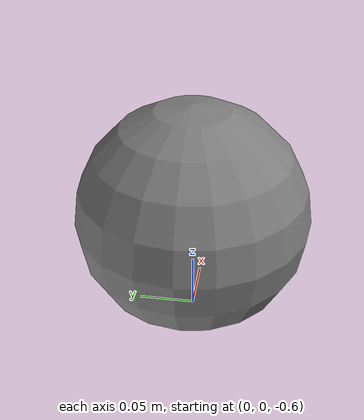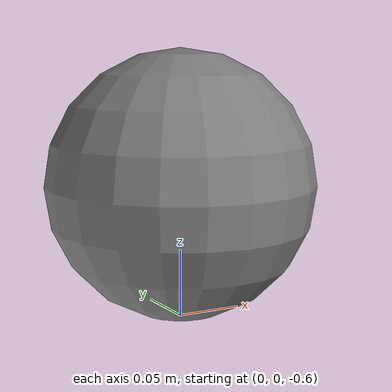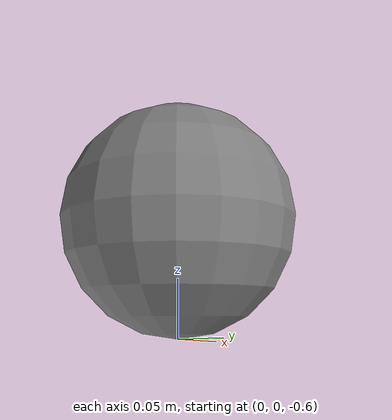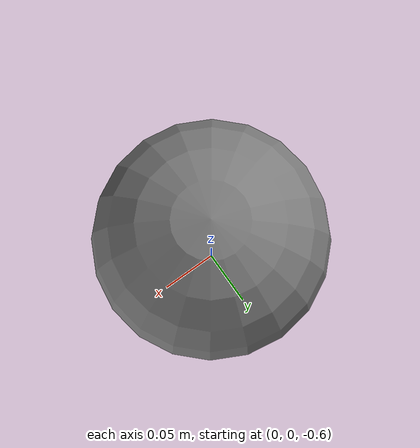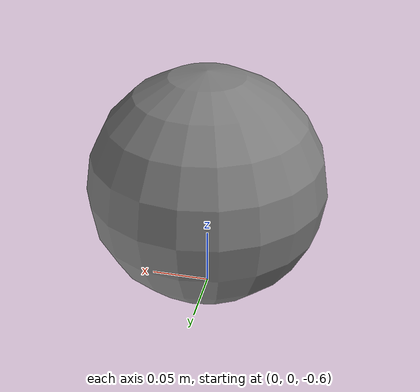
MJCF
<mujoco model="spring_gravity">
            <compiler angle="radian"/>
            <option gravity="0 0 -9.81" timestep="0.0005"/>
            <worldbody>
                <body name="pendulum" pos="0 0 0">
                    <joint name="hinge" type="hinge" axis="0 1 0"
                           stiffness="100" damping="5" springref="0"/>
                    <geom type="sphere" size="0.1" pos="0 0 -0.5" mass="1.0"/>
                </body>
            </worldbody>
        </mujoco>
